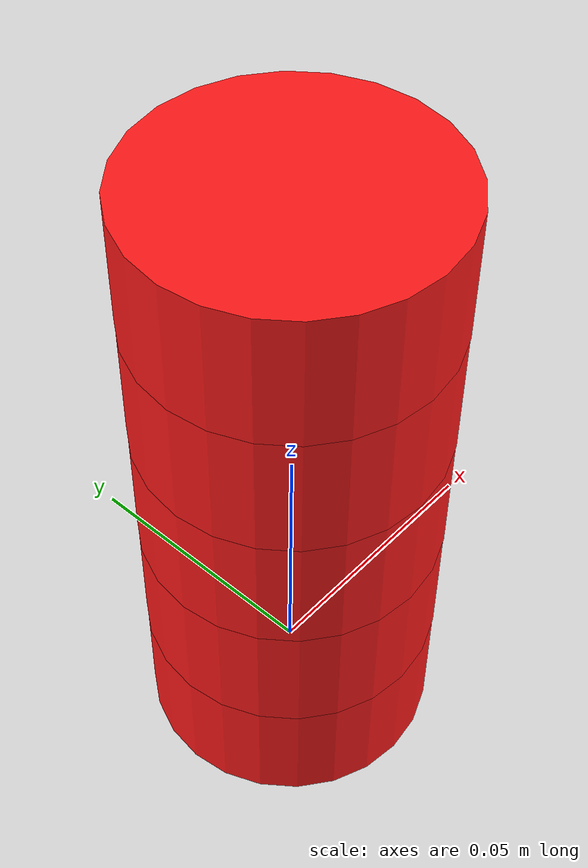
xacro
<?xml version="1.0"?>
<robot name="popcan" xmlns:xacro="http://wiki.ros.org/xacro">

<xacro:property name="radius" value="0.027051"/>
<xacro:property name="height" value="0.122682"/>
<xacro:property name="mu" value="5.0"/>

<xacro:include filename="$(find popcanbot_description)/urdf/util.xacro"/>

  <!-- Make a slightly conical cylinder to increase ability to hold can -->
  <link name="popcan_base_link"/>
  <xacro:wheel name="popcan1"
      radius="${radius}" width="${height/5.0}" mass="${0.37/5.0}"
      r="1.0" g="0.1" b="0.1"
      mu="${mu}"/>
  <joint name="popcan_joint1" type="fixed">
    <parent link="popcan_base_link"/>
    <child link="popcan1"/>
    <origin xyz="0 0 0" rpy="${pi/2.0} 0 0"/>
  </joint>
  <xacro:wheel name="popcan2"
      radius="${radius + 0.0001}" width="${height/5.0}" mass="${0.37/5.0}"
      r="1.0" g="0.1" b="0.1"
      mu="${mu}"/>
  <joint name="popcan_joint2" type="fixed">
    <parent link="popcan1"/>
    <child link="popcan2"/>
    <origin xyz="0 ${height/5.0} 0" rpy="0 0 0"/>
  </joint>
  <xacro:wheel name="popcan3"
      radius="${radius + 0.0002}" width="${height/5.0}" mass="${0.37/5.0}"
      r="1.0" g="0.1" b="0.1"
      mu="${mu}"/>
  <joint name="popcan_joint3" type="fixed">
    <parent link="popcan2"/>
    <child link="popcan3"/>
    <origin xyz="0 ${height/5.0} 0" rpy="0 0 0"/>
  </joint>
  <xacro:wheel name="popcan4"
      radius="${radius + 0.0003}" width="${height/5.0}" mass="${0.37/5.0}"
      r="1.0" g="0.1" b="0.1"
      mu="${mu}"/>
  <joint name="popcan_joint4" type="fixed">
    <parent link="popcan3"/>
    <child link="popcan4"/>
    <origin xyz="0 ${height/5.0} 0" rpy="0 0 0"/>
  </joint>
  <xacro:wheel name="popcan5"
      radius="${radius + 0.0004}" width="${height/5.0}" mass="${0.37/5.0}"
      r="1.0" g="0.1" b="0.1"
      mu="${mu}"/>
  <joint name="popcan_joint5" type="fixed">
    <parent link="popcan4"/>
    <child link="popcan5"/>
    <origin xyz="0 ${height/5.0} 0" rpy="0 0 0"/>
  </joint>
</robot>

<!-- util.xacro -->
<robot name="util" xmlns:xacro="http://wiki.ros.org/xacro">

<!-- don't use macro names that are the same as other key names
  like 'box', 'cylinder', etc. otherwise get Invalid parameter "size"
-->
<xacro:macro name="block" params="name length width height mass
    x:=0 y:=0 z:=0
    r:=0.5 b:=0.5 g:=0.5
    mu:=0.0 kp:=1000.0 kd:=1.0">
  <link name="${name}">
     <visual>
      <origin xyz="${x} ${y} ${z}" rpy="0 0 0"/>
      <geometry>
        <box size="${length} ${width} ${height}"/>
      </geometry>
      <material name="${name}_gray">
        <color rgba="${r} ${g} ${b} 1"/>
      </material>
    </visual>
    <collision>
      <origin xyz="${x} ${y} ${z}" rpy="0 0 0"/>
      <geometry>
        <box size="${length} ${width} ${height}"/>
      </geometry>
      <contact_coefficients mu="${mu}" kp="${kp}" kd="${kd}"/>
    </collision>
    <inertial>
      <origin xyz="${x} ${y} ${z}" rpy="0 0 0"/>
      <mass value="${mass}"/>
      <inertia
          ixx="${mass / 12.0 * (width * width + height * height)}" ixy="0.0" ixz="0.0"
          iyy="${mass / 12.0 * (length * length + height * height)}" iyz="0.0"
          izz="${mass / 12.0 * (length * length + width * width)}" />
    </inertial>
  </link>
</xacro:macro>

<!-- a wheel that rotates around the y axis, rolls forward toward the x axis -->
<!--origin xyz="${length/2} ${width/2} ${height/2}" /-->
<xacro:macro name="wheel" params="name width radius mass
    r:=0.5 b:=0.5 g:=0.5
    mu:=0.0 kp:=1000.0 kd:=1.0">
  <link name="${name}">
    <visual>
      <origin xyz="0 0 0" rpy="${pi/2} 0 0" />
      <geometry>
        <cylinder length="${width}" radius="${radius}"/>
      </geometry>
      <material name="${name}_black">
        <color rgba="${r} ${g} ${b} 1"/>
      </material>
    </visual>
    <collision>
      <origin xyz="0 0 0" rpy="${pi/2} 0 0" />
      <geometry>
        <cylinder length="${width}" radius="${radius}"/>
      </geometry>
      <contact_coefficients mu="${mu}" kp="${kp}" kd="${kd}"/>
    </collision>
    <inertial>
      <origin xyz="0 0 0" rpy="${pi/2} 0 0" />
      <mass value="${mass}"/>
      <inertia
          ixx="${mass / 12.0 * (3 * radius * radius + width * width)}" ixy="0.0" ixz="0.0"
          iyy="${mass / 12.0 * (3 * radius * radius + width * width)}" iyz="0.0"
          izz="${mass / 2.0 * (radius * radius)}"/>
    </inertial>
  </link>
  <gazebo reference="${name}">
    <!-- this doesn't work, how to specify rgb color for gazebo? -->
    <!--color rgba="${r} ${g} ${b} 1.0"/-->
  </gazebo>
</xacro:macro>

<xacro:macro name="generic_wheel" params="name parent radius width
    x:=0 y:=0 z:=0
    r:=0.6 g:=0.6 b:=0.6
    y_axis:=1 mass:=0.2 use_tran:=true
    mu1:=200 mu2:=100">

  <xacro:wheel name="${name}" width="${width}" radius="${radius}" mass="${mass}"
      r="1.0" g="1.0" b="1.0"/>
  <joint name="${name}_joint" type="continuous">
    <parent link="${parent}"/>
    <child link="${name}"/>
    <origin xyz="${x} ${y} ${z}" rpy="0 0 0"/>
    <axis xyz="0 ${y_axis} 0"/>
    <limit effort="100.0" velocity="0.5"/>
  </joint>

  <xacro:if value="${use_tran}">
  <transmission name="${name}_tran">
    <type>transmission_interface/SimpleTransmission</type>
    <joint name="${name}_joint">
      <hardwareInterface>EffortJointInterface</hardwareInterface>
    </joint>
    <actuator name="${name}_motor">
      <hardwareInterface>EffortJointInterface</hardwareInterface>
      <mechanicalReduction>1</mechanicalReduction>
    </actuator>
  </transmission>
  </xacro:if>

  <gazebo reference="${name}">
    <mu1>${mu1}</mu1>
    <mu2>${mu2}</mu2>
    <kp value="10000000.0"/>
    <kd value="1.0"/>
  </gazebo>
</xacro:macro>  <!-- generic wheel -->

</robot>
